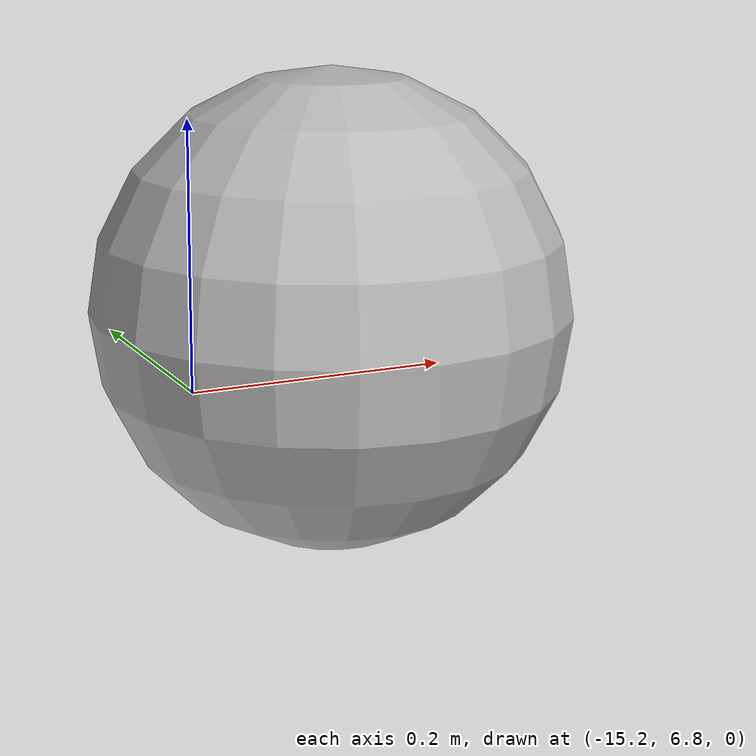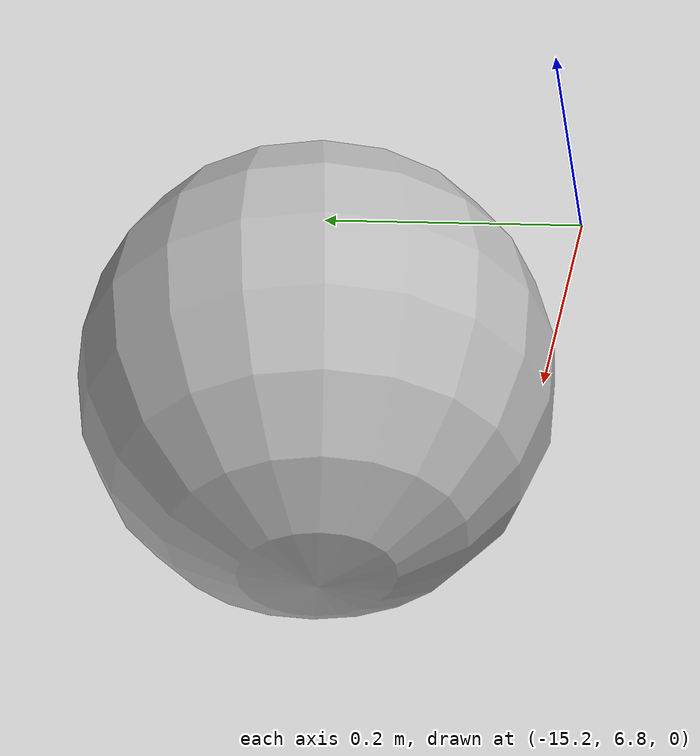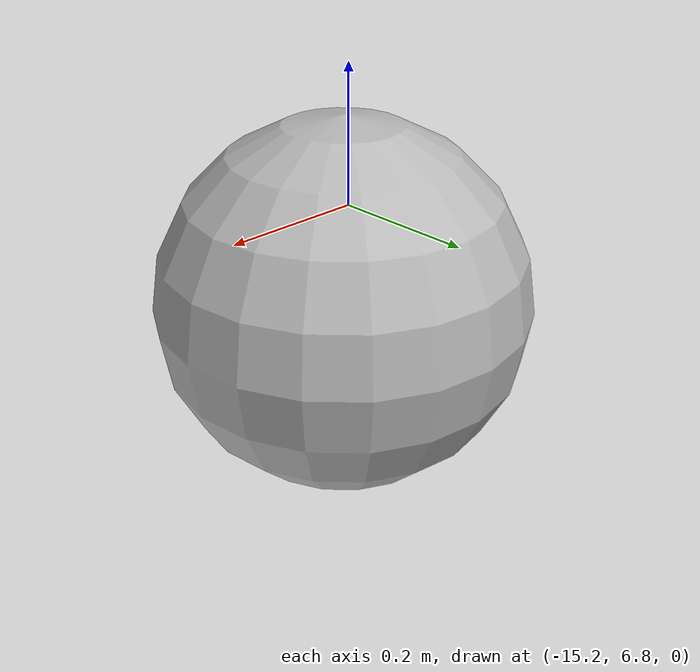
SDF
<?xml version="1.0"?>
<sdf version="1.6">
  <model name="obstacle_0">
    <static>false</static>
    <link name="link">
      <pose>-15 7 0 0 0 0</pose>
      <collision name="collision">
        <geometry>
          <sphere>
            <radius>0.21</radius>
          </sphere>
        </geometry>
        <surface>
          <contact>
            <collide_without_contact_bitmask>1</collide_without_contact_bitmask>
          </contact>
        </surface>
      </collision>
      <visual name="visual">
        <geometry>
          <sphere>
            <radius>0.21</radius>
          </sphere>
        </geometry>
      </visual>
    </link>

    <plugin name="vrx::PolyhedraBuoyancyDrag" filename="libPolyhedraBuoyancyDrag.so">
      <fluid_density>1000</fluid_density>
      <fluid_level>0.0</fluid_level>
      <linear_drag>75.0</linear_drag>
      <angular_drag>2.0</angular_drag>
      <buoyancy name="collision_outer">
        <link_name>link</link_name>
        <pose>0 0 0 0 0 0</pose>
        <geometry>
          <sphere>
            <radius>0.21</radius>
          </sphere>
        </geometry>
      </buoyancy>
      <wavefield>
        <topic>/vrx/wavefield/parameters</topic>
      </wavefield>
    </plugin>
  </model>
</sdf>
